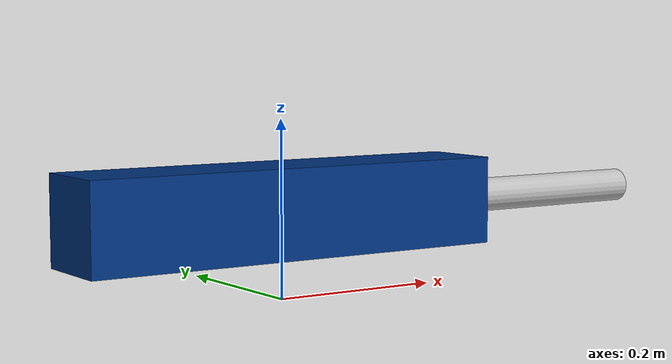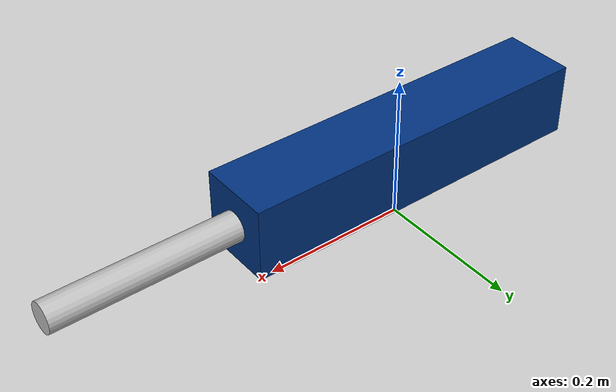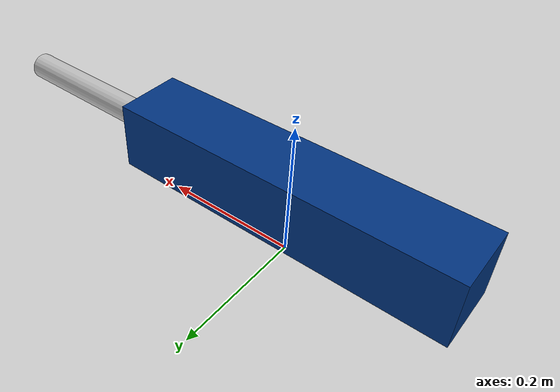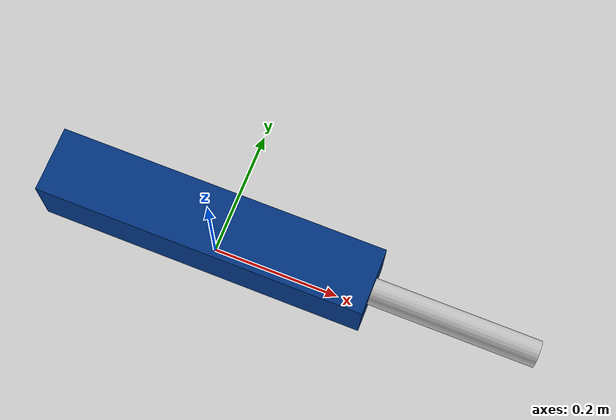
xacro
<?xml version="1.0"?>
<robot xmlns:xacro="http://www.ros.org/wiki/xacro" name="parker_linear_actuator">

    <xacro:arg name="sim_mode" default="false"/>

    <!-- Materials -->
    <material name="dark_grey">
        <color rgba="0.2 0.2 0.2 1.0"/>
    </material>
    <material name="silver">
        <color rgba="0.75 0.75 0.75 1.0"/>
    </material>
    <material name="parker_blue">
        <color rgba="0.0 0.2 0.5 1.0"/>
    </material>

    <!-- World Link -->
    <link name="world"/>

    <joint name="world_to_base" type="fixed">
        <parent link="world"/>
        <child link="base_link"/>
        <origin xyz="0 0 0.1" rpy="0 0 0"/>
    </joint>

    <!-- Base Link (outer housing / tube) -->
    <link name="base_link">
        <visual>
            <origin xyz="0 0 0" rpy="0 1.5708 0"/>
            <geometry>
                <box size="0.1 0.1 0.5"/>
            </geometry>
            <material name="parker_blue"/>
        </visual>
        <collision>
            <origin xyz="0 0 0" rpy="0 1.5708 0"/>
            <geometry>
                <box size="0.1 0.1 0.5"/>
            </geometry>
        </collision>
        <inertial>
            <mass value="5.0"/>
            <inertia ixx="0.1" ixy="0" ixz="0" iyy="0.1" iyz="0" izz="0.1"/>
        </inertial>
    </link>

    <!-- Slider Link (moving rod) -->
    <link name="slider_link">
        <visual>
            <origin xyz="0.25 0 0" rpy="0 1.5708 0"/>
            <geometry>
                <cylinder radius="0.02" length="0.5"/>
            </geometry>
            <material name="silver"/>
        </visual>
        <collision>
            <origin xyz="0.25 0 0" rpy="0 1.5708 0"/>
            <geometry>
                <cylinder radius="0.02" length="0.5"/>
            </geometry>
        </collision>
        <inertial>
            <mass value="1.0"/>
            <inertia ixx="0.01" ixy="0" ixz="0" iyy="0.01" iyz="0" izz="0.01"/>
        </inertial>
    </link>

    <!-- Prismatic Joint — 0 to 400 mm stroke -->
    <joint name="slider_joint" type="prismatic">
        <parent link="base_link"/>
        <child link="slider_link"/>
        <origin xyz="0 0 0" rpy="0 0 0"/>
        <axis xyz="1 0 0"/>
        <limit lower="0.0" upper="0.4" effort="1000.0" velocity="0.5"/>
        <dynamics damping="10.0" friction="5.0"/>
    </joint>

    <!-- SIMULATION MODE: mock_components mirrors commands → states instantly -->
    <xacro:if value="$(arg sim_mode)">
        <ros2_control name="ParkerHardwareInterface" type="system">
            <hardware>
                <plugin>mock_components/GenericSystem</plugin>
                <param name="fake_sensor_commands">false</param>
                <param name="state_following_offset">0.0</param>
            </hardware>
            <joint name="slider_joint">
                <command_interface name="position">
                    <param name="min">0.0</param>
                    <param name="max">0.4</param>
                </command_interface>
                <command_interface name="velocity"/>
                <state_interface name="position">
                    <param name="initial_value">0.0</param>
                </state_interface>
                <state_interface name="velocity">
                    <param name="initial_value">0.0</param>
                </state_interface>
            </joint>
        </ros2_control>
    </xacro:if>

    <!-- REAL HARDWARE MODE: Parker Compax3 over RS232 -->
    <xacro:unless value="$(arg sim_mode)">
        <ros2_control name="ParkerHardwareInterface" type="system">
            <hardware>
                <plugin>parker_actuator/ParkerHardwareInterface</plugin>
                <param name="serial_port">/dev/ttyUSB0</param>
                <param name="baud_rate">115200</param>
            </hardware>
            <joint name="slider_joint">
                <command_interface name="position">
                    <param name="min">0.0</param>
                    <param name="max">0.4</param>
                </command_interface>
                <command_interface name="velocity"/>
                <state_interface name="position">
                    <param name="initial_value">0.0</param>
                </state_interface>
                <state_interface name="velocity">
                    <param name="initial_value">0.0</param>
                </state_interface>
            </joint>
        </ros2_control>
    </xacro:unless>

</robot>
